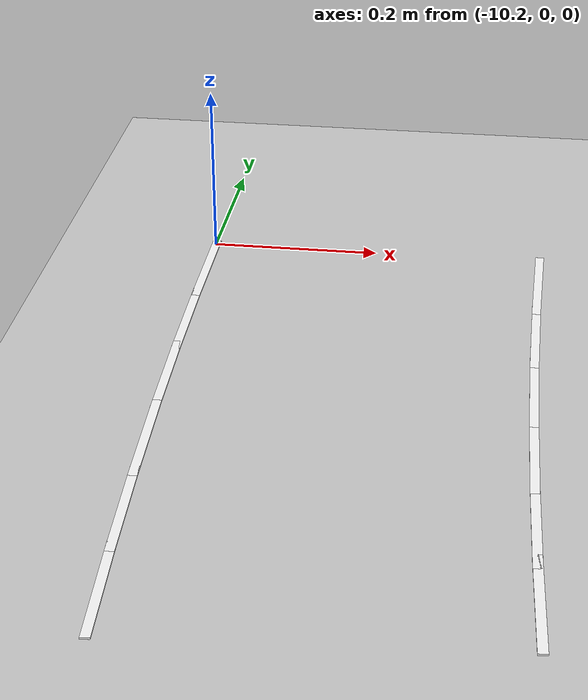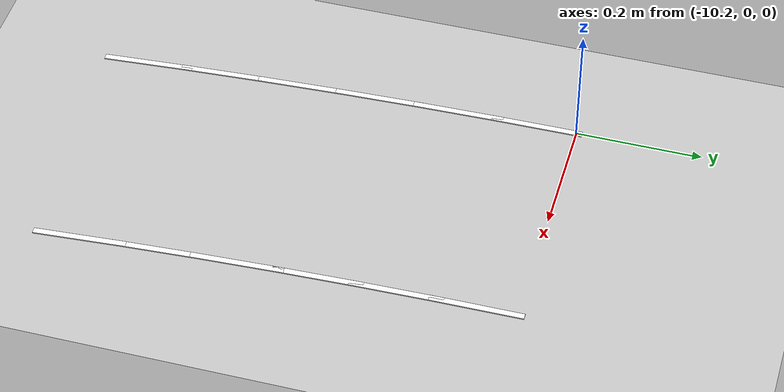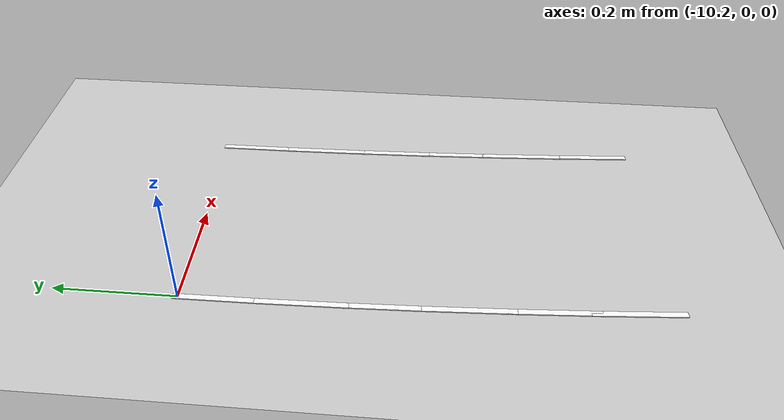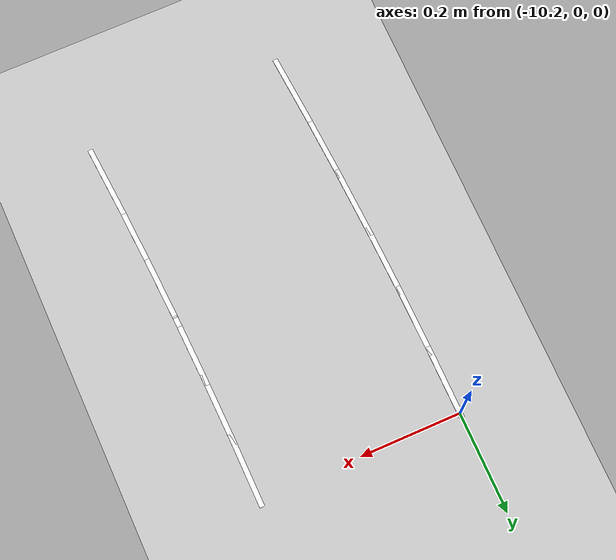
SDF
<sdf version="1.7">
 <world name="default">
  <model name="ground_plane">
   <static>1</static>
   <link name="link">
    <collision name="collision">
     <geometry><plane><normal>0 0 1</normal><size>100 100</size></plane></geometry>
     <surface>
      <contact><collide_bitmask>65535</collide_bitmask></contact>
      <friction><ode><mu>100</mu><mu2>50</mu2></ode></friction>
     </surface>
    </collision>
    <visual name="visual">
     <cast_shadows>0</cast_shadows>
     <geometry><plane><normal>0 0 1</normal><size>100 100</size></plane></geometry>
     <material>
      <script><uri>file://media/materials/scripts/gazebo.material</uri><name>Gazebo/Grey</name></script>
     </material>
    </visual>
   </link>
  </model>
  <model name="lane_line_left_250">
   <static>1</static>
   <link name="link">
    <pose>0 0 -0.004 0 -0 0</pose>
    <visual name="visual">
     <geometry><box><size>0.1457 0.01 0.01</size></box></geometry>
     <material><ambient>1 1 1 1</ambient><diffuse>1 1 1 1</diffuse></material>
    </visual>
    <collision name="collision"><geometry><box><size>0.1457 0.01 0.01</size></box></geometry></collision>
   </link>
   <pose>-9.79961 -0.061574 0 0 0 -1.56451</pose>
  </model>
  <model name="lane_line_right_250">
   <static>1</static>
   <link name="link">
    <pose>0 0 -0.004 0 -0 0</pose>
    <visual name="visual">
     <geometry><box><size>0.1457 0.01 0.01</size></box></geometry>
     <material><ambient>1 1 1 1</ambient><diffuse>1 1 1 1</diffuse></material>
    </visual>
    <collision name="collision"><geometry><box><size>0.1457 0.01 0.01</size></box></geometry></collision>
   </link>
   <pose>-10.1996 -0.064087 0 0 0 -1.56451</pose>
  </model>
  <model name="lane_line_left_251">
   <static>1</static>
   <link name="link">
    <pose>0 0 -0.004 0 -0 0</pose>
    <visual name="visual">
     <geometry><box><size>0.1457 0.01 0.01</size></box></geometry>
     <material><ambient>1 1 1 1</ambient><diffuse>1 1 1 1</diffuse></material>
    </visual>
    <collision name="collision"><geometry><box><size>0.1457 0.01 0.01</size></box></geometry></collision>
   </link>
   <pose>-9.79806 -0.184711 0 0 0 -1.55195</pose>
  </model>
  <model name="lane_line_right_251">
   <static>1</static>
   <link name="link">
    <pose>0 0 -0.004 0 -0 0</pose>
    <visual name="visual">
     <geometry><box><size>0.1457 0.01 0.01</size></box></geometry>
     <material><ambient>1 1 1 1</ambient><diffuse>1 1 1 1</diffuse></material>
    </visual>
    <collision name="collision"><geometry><box><size>0.1457 0.01 0.01</size></box></geometry></collision>
   </link>
   <pose>-10.198 -0.19225 0 0 0 -1.55195</pose>
  </model>
  <model name="lane_line_left_252">
   <static>1</static>
   <link name="link">
    <pose>0 0 -0.004 0 -0 0</pose>
    <visual name="visual">
     <geometry><box><size>0.1457 0.01 0.01</size></box></geometry>
     <material><ambient>1 1 1 1</ambient><diffuse>1 1 1 1</diffuse></material>
    </visual>
    <collision name="collision"><geometry><box><size>0.1457 0.01 0.01</size></box></geometry></collision>
   </link>
   <pose>-9.79497 -0.307819 0 0 0 -1.53938</pose>
  </model>
  <model name="lane_line_right_252">
   <static>1</static>
   <link name="link">
    <pose>0 0 -0.004 0 -0 0</pose>
    <visual name="visual">
     <geometry><box><size>0.1457 0.01 0.01</size></box></geometry>
     <material><ambient>1 1 1 1</ambient><diffuse>1 1 1 1</diffuse></material>
    </visual>
    <collision name="collision"><geometry><box><size>0.1457 0.01 0.01</size></box></geometry></collision>
   </link>
   <pose>-10.1948 -0.320384 0 0 0 -1.53938</pose>
  </model>
  <model name="lane_line_left_253">
   <static>1</static>
   <link name="link">
    <pose>0 0 -0.004 0 -0 0</pose>
    <visual name="visual">
     <geometry><box><size>0.1457 0.01 0.01</size></box></geometry>
     <material><ambient>1 1 1 1</ambient><diffuse>1 1 1 1</diffuse></material>
    </visual>
    <collision name="collision"><geometry><box><size>0.1457 0.01 0.01</size></box></geometry></collision>
   </link>
   <pose>-9.79033 -0.430879 0 0 0 -1.52681</pose>
  </model>
  <model name="lane_line_right_253">
   <static>1</static>
   <link name="link">
    <pose>0 0 -0.004 0 -0 0</pose>
    <visual name="visual">
     <geometry><box><size>0.1457 0.01 0.01</size></box></geometry>
     <material><ambient>1 1 1 1</ambient><diffuse>1 1 1 1</diffuse></material>
    </visual>
    <collision name="collision"><geometry><box><size>0.1457 0.01 0.01</size></box></geometry></collision>
   </link>
   <pose>-10.1899 -0.448466 0 0 0 -1.52681</pose>
  </model>
  <model name="lane_line_left_254">
   <static>1</static>
   <link name="link">
    <pose>0 0 -0.004 0 -0 0</pose>
    <visual name="visual">
     <geometry><box><size>0.1457 0.01 0.01</size></box></geometry>
     <material><ambient>1 1 1 1</ambient><diffuse>1 1 1 1</diffuse></material>
    </visual>
    <collision name="collision"><geometry><box><size>0.1457 0.01 0.01</size></box></geometry></collision>
   </link>
   <pose>-9.78414 -0.55387 0 0 0 -1.51425</pose>
  </model>
  <model name="lane_line_right_254">
   <static>1</static>
   <link name="link">
    <pose>0 0 -0.004 0 -0 0</pose>
    <visual name="visual">
     <geometry><box><size>0.1457 0.01 0.01</size></box></geometry>
     <material><ambient>1 1 1 1</ambient><diffuse>1 1 1 1</diffuse></material>
    </visual>
    <collision name="collision"><geometry><box><size>0.1457 0.01 0.01</size></box></geometry></collision>
   </link>
   <pose>-10.1835 -0.576478 0 0 0 -1.51425</pose>
  </model>
  <model name="lane_line_left_255">
   <static>1</static>
   <link name="link">
    <pose>0 0 -0.004 0 -0 0</pose>
    <visual name="visual">
     <geometry><box><size>0.1457 0.01 0.01</size></box></geometry>
     <material><ambient>1 1 1 1</ambient><diffuse>1 1 1 1</diffuse></material>
    </visual>
    <collision name="collision"><geometry><box><size>0.1457 0.01 0.01</size></box></geometry></collision>
   </link>
   <pose>-9.77641 -0.676775 0 0 0 -1.50168</pose>
  </model>
  <model name="lane_line_right_255">
   <static>1</static>
   <link name="link">
    <pose>0 0 -0.004 0 -0 0</pose>
    <visual name="visual">
     <geometry><box><size>0.1457 0.01 0.01</size></box></geometry>
     <material><ambient>1 1 1 1</ambient><diffuse>1 1 1 1</diffuse></material>
    </visual>
    <collision name="collision"><geometry><box><size>0.1457 0.01 0.01</size></box></geometry></collision>
   </link>
   <pose>-10.1755 -0.704399 0 0 0 -1.50168</pose>
  </model>
 </world>
</sdf>
